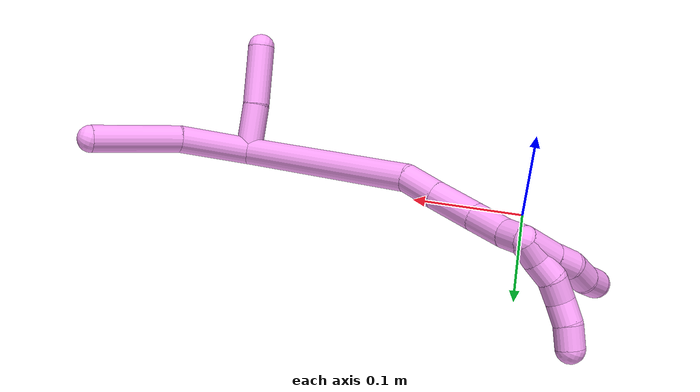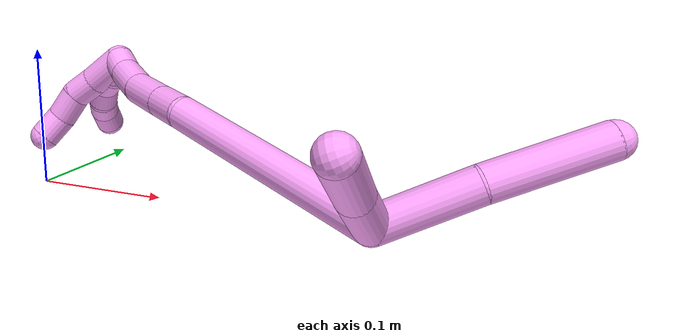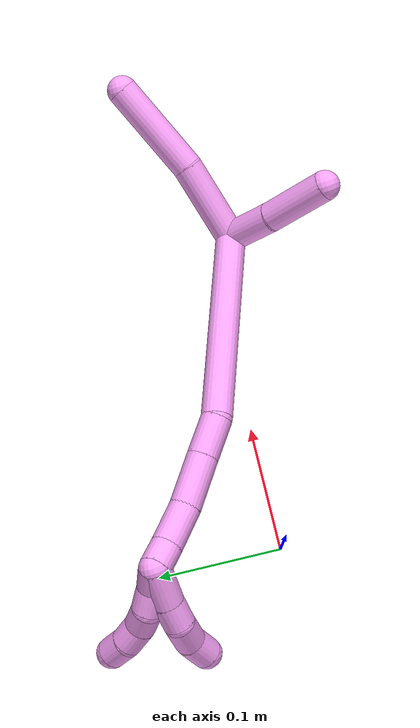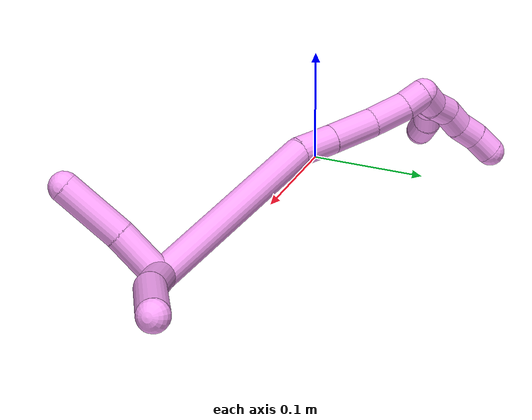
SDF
<sdf version="1.7">
 <world name="default">
  <model name="4">
   <static>0</static>
   <link name="4">
    <collision name="collision-cylinder-e_1_2_8">
     <pose>-0.00515 0.006086 0.033237 -0.181103 -0.151259 0.01376</pose>
     <geometry><cylinder><radius>0.0125</radius><length>0.068359</length></cylinder></geometry>
     <surface>
      <friction><ode><mu>1.16</mu><mu2>1.16</mu2><slip1>0</slip1><slip2>0</slip2></ode></friction>
      <contact><ode><kp>1e+06</kp><kd>1</kd><max_vel>0</max_vel><min_depth>0.001</min_depth></ode></contact>
     </surface>
    </collision>
    <visual name="visual-cylinder-e_1_2_8">
     <pose>-0.00515 0.006086 0.033237 -0.181103 -0.151259 0.01376</pose>
     <geometry><cylinder><radius>0.0125</radius><length>0.068359</length></cylinder></geometry>
     <material><ambient>1 0.65098 0.996078 1</ambient></material>
    </visual>
    <collision name="collision-cylinder-e_2_8_6">
     <pose>-0.017495 0.025856 0.104253 -0.347522 -0.177185 0.031181</pose>
     <geometry><cylinder><radius>0.0125</radius><length>0.081641</length></cylinder></geometry>
     <surface>
      <friction><ode><mu>1.16</mu><mu2>1.16</mu2><slip1>0</slip1><slip2>0</slip2></ode></friction>
      <contact><ode><kp>1e+06</kp><kd>1</kd><max_vel>0</max_vel><min_depth>0.001</min_depth></ode></contact>
     </surface>
    </collision>
    <visual name="visual-cylinder-e_2_8_6">
     <pose>-0.017495 0.025856 0.104253 -0.347522 -0.177185 0.031181</pose>
     <geometry><cylinder><radius>0.0125</radius><length>0.081641</length></cylinder></geometry>
     <material><ambient>1 0.65098 0.996078 1</ambient></material>
    </visual>
    <collision name="collision-cylinder-e_1_2_9">
     <pose>-0.00032 -0.021762 0.003817 1.39716 -0.014482 -0.012163</pose>
     <geometry><cylinder><radius>0.0125</radius><length>0.044193</length></cylinder></geometry>
     <surface>
      <friction><ode><mu>1.16</mu><mu2>1.16</mu2><slip1>0</slip1><slip2>0</slip2></ode></friction>
      <contact><ode><kp>1e+06</kp><kd>1</kd><max_vel>0</max_vel><min_depth>0.001</min_depth></ode></contact>
     </surface>
    </collision>
    <visual name="visual-cylinder-e_1_2_9">
     <pose>-0.00032 -0.021762 0.003817 1.39716 -0.014482 -0.012163</pose>
     <geometry><cylinder><radius>0.0125</radius><length>0.044193</length></cylinder></geometry>
     <material><ambient>1 0.65098 0.996078 1</ambient></material>
    </visual>
    <collision name="collision-cylinder-e_2_9_5">
     <pose>0.001398 -0.070627 0.013948 1.34193 0.073118 0.058053</pose>
     <geometry><cylinder><radius>0.0125</radius><length>0.055807</length></cylinder></geometry>
     <surface>
      <friction><ode><mu>1.16</mu><mu2>1.16</mu2><slip1>0</slip1><slip2>0</slip2></ode></friction>
      <contact><ode><kp>1e+06</kp><kd>1</kd><max_vel>0</max_vel><min_depth>0.001</min_depth></ode></contact>
     </surface>
    </collision>
    <visual name="visual-cylinder-e_2_9_5">
     <pose>0.001398 -0.070627 0.013948 1.34193 0.073118 0.058053</pose>
     <geometry><cylinder><radius>0.0125</radius><length>0.055807</length></cylinder></geometry>
     <material><ambient>1 0.65098 0.996078 1</ambient></material>
    </visual>
    <collision name="collision-cylinder-e_1_2_10">
     <pose>-0.06056 -0.006719 -0.059374 3.0289 -0.792104 -2.87343</pose>
     <geometry><cylinder><radius>0.0125</radius><length>0.170151</length></cylinder></geometry>
     <surface>
      <friction><ode><mu>1.16</mu><mu2>1.16</mu2><slip1>0</slip1><slip2>0</slip2></ode></friction>
      <contact><ode><kp>1e+06</kp><kd>1</kd><max_vel>0</max_vel><min_depth>0.001</min_depth></ode></contact>
     </surface>
    </collision>
    <visual name="visual-cylinder-e_1_2_10">
     <pose>-0.06056 -0.006719 -0.059374 3.0289 -0.792104 -2.87343</pose>
     <geometry><cylinder><radius>0.0125</radius><length>0.170151</length></cylinder></geometry>
     <material><ambient>1 0.65098 0.996078 1</ambient></material>
    </visual>
    <collision name="collision-cylinder-e_2_10_11">
     <pose>-0.132663 -0.009464 -0.129839 -2.79753 -0.775216 2.33686</pose>
     <geometry><cylinder><radius>0.0125</radius><length>0.03299</length></cylinder></geometry>
     <surface>
      <friction><ode><mu>1.16</mu><mu2>1.16</mu2><slip1>0</slip1><slip2>0</slip2></ode></friction>
      <contact><ode><kp>1e+06</kp><kd>1</kd><max_vel>0</max_vel><min_depth>0.001</min_depth></ode></contact>
     </surface>
    </collision>
    <visual name="visual-cylinder-e_2_10_11">
     <pose>-0.132663 -0.009464 -0.129839 -2.79753 -0.775216 2.33686</pose>
     <geometry><cylinder><radius>0.0125</radius><length>0.03299</length></cylinder></geometry>
     <material><ambient>1 0.65098 0.996078 1</ambient></material>
    </visual>
    <collision name="collision-cylinder-e_3_11_12">
     <pose>-0.15901 -0.000922 -0.154998 -2.82764 -0.785774 2.41195</pose>
     <geometry><cylinder><radius>0.0125</radius><length>0.041852</length></cylinder></geometry>
     <surface>
      <friction><ode><mu>1.16</mu><mu2>1.16</mu2><slip1>0</slip1><slip2>0</slip2></ode></friction>
      <contact><ode><kp>1e+06</kp><kd>1</kd><max_vel>0</max_vel><min_depth>0.001</min_depth></ode></contact>
     </surface>
    </collision>
    <visual name="visual-cylinder-e_3_11_12">
     <pose>-0.15901 -0.000922 -0.154998 -2.82764 -0.785774 2.41195</pose>
     <geometry><cylinder><radius>0.0125</radius><length>0.041852</length></cylinder></geometry>
     <material><ambient>1 0.65098 0.996078 1</ambient></material>
    </visual>
    <collision name="collision-cylinder-e_4_12_13">
     <pose>-0.187645 0.00718 -0.178349 -2.77781 -0.948062 2.45315</pose>
     <geometry><cylinder><radius>0.0125</radius><length>0.034059</length></cylinder></geometry>
     <surface>
      <friction><ode><mu>1.16</mu><mu2>1.16</mu2><slip1>0</slip1><slip2>0</slip2></ode></friction>
      <contact><ode><kp>1e+06</kp><kd>1</kd><max_vel>0</max_vel><min_depth>0.001</min_depth></ode></contact>
     </surface>
    </collision>
    <visual name="visual-cylinder-e_4_12_13">
     <pose>-0.187645 0.00718 -0.178349 -2.77781 -0.948062 2.45315</pose>
     <geometry><cylinder><radius>0.0125</radius><length>0.034059</length></cylinder></geometry>
     <material><ambient>1 0.65098 0.996078 1</ambient></material>
    </visual>
    <collision name="collision-cylinder-e_5_13_1">
     <pose>-0.210932 0.011674 -0.192037 -2.92704 -1.12579 2.80352</pose>
     <geometry><cylinder><radius>0.0125</radius><length>0.020948</length></cylinder></geometry>
     <surface>
      <friction><ode><mu>1.16</mu><mu2>1.16</mu2><slip1>0</slip1><slip2>0</slip2></ode></friction>
      <contact><ode><kp>1e+06</kp><kd>1</kd><max_vel>0</max_vel><min_depth>0.001</min_depth></ode></contact>
     </surface>
    </collision>
    <visual name="visual-cylinder-e_5_13_1">
     <pose>-0.210932 0.011674 -0.192037 -2.92704 -1.12579 2.80352</pose>
     <geometry><cylinder><radius>0.0125</radius><length>0.020948</length></cylinder></geometry>
     <material><ambient>1 0.65098 0.996078 1</ambient></material>
    </visual>
    <collision name="collision-cylinder-e_1_1_14">
     <pose>-0.218855 0.018007 -0.204736 -2.56666 0.153706 -0.509589</pose>
     <geometry><cylinder><radius>0.0125</radius><length>0.02</length></cylinder></geometry>
     <surface>
      <friction><ode><mu>1.16</mu><mu2>1.16</mu2><slip1>0</slip1><slip2>0</slip2></ode></friction>
      <contact><ode><kp>1e+06</kp><kd>1</kd><max_vel>0</max_vel><min_depth>0.001</min_depth></ode></contact>
     </surface>
    </collision>
    <visual name="visual-cylinder-e_1_1_14">
     <pose>-0.218855 0.018007 -0.204736 -2.56666 0.153706 -0.509589</pose>
     <geometry><cylinder><radius>0.0125</radius><length>0.02</length></cylinder></geometry>
     <material><ambient>1 0.65098 0.996078 1</ambient></material>
    </visual>
    <collision name="collision-cylinder-e_2_14_15">
     <pose>-0.218654 0.028731 -0.221373 -2.57143 -0.13336 0.448077</pose>
     <geometry><cylinder><radius>0.0125</radius><length>0.02</length></cylinder></geometry>
     <surface>
      <friction><ode><mu>1.16</mu><mu2>1.16</mu2><slip1>0</slip1><slip2>0</slip2></ode></friction>
      <contact><ode><kp>1e+06</kp><kd>1</kd><max_vel>0</max_vel><min_depth>0.001</min_depth></ode></contact>
     </surface>
    </collision>
    <visual name="visual-cylinder-e_2_14_15">
     <pose>-0.218654 0.028731 -0.221373 -2.57143 -0.13336 0.448077</pose>
     <geometry><cylinder><radius>0.0125</radius><length>0.02</length></cylinder></geometry>
     <material><ambient>1 0.65098 0.996078 1</ambient></material>
    </visual>
    <collision name="collision-cylinder-e_3_15_16">
     <pose>-0.21881 0.041289 -0.236547 -2.32934 0.11762 -0.272139</pose>
     <geometry><cylinder><radius>0.0125</radius><length>0.02</length></cylinder></geometry>
     <surface>
      <friction><ode><mu>1.16</mu><mu2>1.16</mu2><slip1>0</slip1><slip2>0</slip2></ode></friction>
      <contact><ode><kp>1e+06</kp><kd>1</kd><max_vel>0</max_vel><min_depth>0.001</min_depth></ode></contact>
     </surface>
    </collision>
    <visual name="visual-cylinder-e_3_15_16">
     <pose>-0.21881 0.041289 -0.236547 -2.32934 0.11762 -0.272139</pose>
     <geometry><cylinder><radius>0.0125</radius><length>0.02</length></cylinder></geometry>
     <material><ambient>1 0.65098 0.996078 1</ambient></material>
    </visual>
    <collision name="collision-cylinder-e_4_16_17">
     <pose>-0.219064 0.056547 -0.249137 -2.19178 -0.1432 0.277204</pose>
     <geometry><cylinder><radius>0.0125</radius><length>0.02</length></cylinder></geometry>
     <surface>
      <friction><ode><mu>1.16</mu><mu2>1.16</mu2><slip1>0</slip1><slip2>0</slip2></ode></friction>
      <contact><ode><kp>1e+06</kp><kd>1</kd><max_vel>0</max_vel><min_depth>0.001</min_depth></ode></contact>
     </surface>
    </collision>
    <visual name="visual-cylinder-e_4_16_17">
     <pose>-0.219064 0.056547 -0.249137 -2.19178 -0.1432 0.277204</pose>
     <geometry><cylinder><radius>0.0125</radius><length>0.02</length></cylinder></geometry>
     <material><ambient>1 0.65098 0.996078 1</ambient></material>
    </visual>
    <collision name="collision-cylinder-e_5_17_4">
     <pose>-0.220411 0.073671 -0.259097 -2.00436 0.008013 -0.012539</pose>
     <geometry><cylinder><radius>0.0125</radius><length>0.02</length></cylinder></geometry>
     <surface>
      <friction><ode><mu>1.16</mu><mu2>1.16</mu2><slip1>0</slip1><slip2>0</slip2></ode></friction>
      <contact><ode><kp>1e+06</kp><kd>1</kd><max_vel>0</max_vel><min_depth>0.001</min_depth></ode></contact>
     </surface>
    </collision>
    <visual name="visual-cylinder-e_5_17_4">
     <pose>-0.220411 0.073671 -0.259097 -2.00436 0.008013 -0.012539</pose>
     <geometry><cylinder><radius>0.0125</radius><length>0.02</length></cylinder></geometry>
     <material><ambient>1 0.65098 0.996078 1</ambient></material>
    </visual>
    <collision name="collision-cylinder-e_1_1_18">
     <pose>-0.217258 0.01483 -0.211783 -2.99938 0.199162 -1.90296</pose>
     <geometry><cylinder><radius>0.0125</radius><length>0.031618</length></cylinder></geometry>
     <surface>
      <friction><ode><mu>1.16</mu><mu2>1.16</mu2><slip1>0</slip1><slip2>0</slip2></ode></friction>
      <contact><ode><kp>1e+06</kp><kd>1</kd><max_vel>0</max_vel><min_depth>0.001</min_depth></ode></contact>
     </surface>
    </collision>
    <visual name="visual-cylinder-e_1_1_18">
     <pose>-0.217258 0.01483 -0.211783 -2.99938 0.199162 -1.90296</pose>
     <geometry><cylinder><radius>0.0125</radius><length>0.031618</length></cylinder></geometry>
     <material><ambient>1 0.65098 0.996078 1</ambient></material>
    </visual>
    <collision name="collision-cylinder-e_2_18_19">
     <pose>-0.211655 0.017486 -0.23748 -3.09727 0.234391 -2.76946</pose>
     <geometry><cylinder><radius>0.0125</radius><length>0.021317</length></cylinder></geometry>
     <surface>
      <friction><ode><mu>1.16</mu><mu2>1.16</mu2><slip1>0</slip1><slip2>0</slip2></ode></friction>
      <contact><ode><kp>1e+06</kp><kd>1</kd><max_vel>0</max_vel><min_depth>0.001</min_depth></ode></contact>
     </surface>
    </collision>
    <visual name="visual-cylinder-e_2_18_19">
     <pose>-0.211655 0.017486 -0.23748 -3.09727 0.234391 -2.76946</pose>
     <geometry><cylinder><radius>0.0125</radius><length>0.021317</length></cylinder></geometry>
     <material><ambient>1 0.65098 0.996078 1</ambient></material>
    </visual>
    <collision name="collision-cylinder-e_3_19_20">
     <pose>-0.203209 0.020859 -0.258223 -2.8681 0.505491 -2.16252</pose>
     <geometry><cylinder><radius>0.0125</radius><length>0.024659</length></cylinder></geometry>
     <surface>
      <friction><ode><mu>1.16</mu><mu2>1.16</mu2><slip1>0</slip1><slip2>0</slip2></ode></friction>
      <contact><ode><kp>1e+06</kp><kd>1</kd><max_vel>0</max_vel><min_depth>0.001</min_depth></ode></contact>
     </surface>
    </collision>
    <visual name="visual-cylinder-e_3_19_20">
     <pose>-0.203209 0.020859 -0.258223 -2.8681 0.505491 -2.16252</pose>
     <geometry><cylinder><radius>0.0125</radius><length>0.024659</length></cylinder></geometry>
     <material><ambient>1 0.65098 0.996078 1</ambient></material>
    </visual>
    <collision name="collision-cylinder-e_4_20_3">
     <pose>-0.190689 0.023585 -0.277696 3.121 0.624482 3.07782</pose>
     <geometry><cylinder><radius>0.0125</radius><length>0.022406</length></cylinder></geometry>
     <surface>
      <friction><ode><mu>1.16</mu><mu2>1.16</mu2><slip1>0</slip1><slip2>0</slip2></ode></friction>
      <contact><ode><kp>1e+06</kp><kd>1</kd><max_vel>0</max_vel><min_depth>0.001</min_depth></ode></contact>
     </surface>
    </collision>
    <visual name="visual-cylinder-e_4_20_3">
     <pose>-0.190689 0.023585 -0.277696 3.121 0.624482 3.07782</pose>
     <geometry><cylinder><radius>0.0125</radius><length>0.022406</length></cylinder></geometry>
     <material><ambient>1 0.65098 0.996078 1</ambient></material>
    </visual>
    <collision name="collision-sphere-3">
     <pose>-0.184139 0.023398 -0.286783 0 -0 0</pose>
     <geometry><sphere><radius>0.0125</radius></sphere></geometry>
     <surface>
      <friction><ode><mu>1.16</mu><mu2>1.16</mu2><slip1>0</slip1><slip2>0</slip2></ode></friction>
      <contact><ode><kp>1e+06</kp><kd>1</kd><max_vel>0</max_vel><min_depth>0.001</min_depth></ode></contact>
     </surface>
    </collision>
    <visual name="visual-sphere-3">
     <pose>-0.184139 0.023398 -0.286783 0 -0 0</pose>
     <geometry><sphere><radius>0.0125</radius></sphere></geometry>
     <material><ambient>1 0.65098 0.996078 1</ambient></material>
    </visual>
    <collision name="collision-sphere-20">
     <pose>-0.197239 0.023772 -0.26861 0 -0 0</pose>
     <geometry><sphere><radius>0.0125</radius></sphere></geometry>
     <surface>
      <friction><ode><mu>1.16</mu><mu2>1.16</mu2><slip1>0</slip1><slip2>0</slip2></ode></friction>
      <contact><ode><kp>1e+06</kp><kd>1</kd><max_vel>0</max_vel><min_depth>0.001</min_depth></ode></contact>
     </surface>
    </collision>
    <visual name="visual-sphere-20">
     <pose>-0.197239 0.023772 -0.26861 0 -0 0</pose>
     <geometry><sphere><radius>0.0125</radius></sphere></geometry>
     <material><ambient>1 0.65098 0.996078 1</ambient></material>
    </visual>
    <collision name="collision-sphere-19">
     <pose>-0.20918 0.017945 -0.247836 0 -0 0</pose>
     <geometry><sphere><radius>0.0125</radius></sphere></geometry>
     <surface>
      <friction><ode><mu>1.16</mu><mu2>1.16</mu2><slip1>0</slip1><slip2>0</slip2></ode></friction>
      <contact><ode><kp>1e+06</kp><kd>1</kd><max_vel>0</max_vel><min_depth>0.001</min_depth></ode></contact>
     </surface>
    </collision>
    <visual name="visual-sphere-19">
     <pose>-0.20918 0.017945 -0.247836 0 -0 0</pose>
     <geometry><sphere><radius>0.0125</radius></sphere></geometry>
     <material><ambient>1 0.65098 0.996078 1</ambient></material>
    </visual>
    <collision name="collision-sphere-10">
     <pose>-0.121119 -0.013439 -0.118747 0 -0 0</pose>
     <geometry><sphere><radius>0.0125</radius></sphere></geometry>
     <surface>
      <friction><ode><mu>1.16</mu><mu2>1.16</mu2><slip1>0</slip1><slip2>0</slip2></ode></friction>
      <contact><ode><kp>1e+06</kp><kd>1</kd><max_vel>0</max_vel><min_depth>0.001</min_depth></ode></contact>
     </surface>
    </collision>
    <visual name="visual-sphere-10">
     <pose>-0.121119 -0.013439 -0.118747 0 -0 0</pose>
     <geometry><sphere><radius>0.0125</radius></sphere></geometry>
     <material><ambient>1 0.65098 0.996078 1</ambient></material>
    </visual>
    <collision name="collision-sphere-5">
     <pose>0.003437 -0.09773 0.020261 0 -0 0</pose>
     <geometry><sphere><radius>0.0125</radius></sphere></geometry>
     <surface>
      <friction><ode><mu>1.16</mu><mu2>1.16</mu2><slip1>0</slip1><slip2>0</slip2></ode></friction>
      <contact><ode><kp>1e+06</kp><kd>1</kd><max_vel>0</max_vel><min_depth>0.001</min_depth></ode></contact>
     </surface>
    </collision>
    <visual name="visual-sphere-5">
     <pose>0.003437 -0.09773 0.020261 0 -0 0</pose>
     <geometry><sphere><radius>0.0125</radius></sphere></geometry>
     <material><ambient>1 0.65098 0.996078 1</ambient></material>
    </visual>
    <collision name="collision-sphere-6">
     <pose>-0.02469 0.039541 0.142032 0 -0 0</pose>
     <geometry><sphere><radius>0.0125</radius></sphere></geometry>
     <surface>
      <friction><ode><mu>1.16</mu><mu2>1.16</mu2><slip1>0</slip1><slip2>0</slip2></ode></friction>
      <contact><ode><kp>1e+06</kp><kd>1</kd><max_vel>0</max_vel><min_depth>0.001</min_depth></ode></contact>
     </surface>
    </collision>
    <visual name="visual-sphere-6">
     <pose>-0.02469 0.039541 0.142032 0 -0 0</pose>
     <geometry><sphere><radius>0.0125</radius></sphere></geometry>
     <material><ambient>1 0.65098 0.996078 1</ambient></material>
    </visual>
    <collision name="collision-sphere-9">
     <pose>-0.00064 -0.043524 0.007634 0 -0 0</pose>
     <geometry><sphere><radius>0.0125</radius></sphere></geometry>
     <surface>
      <friction><ode><mu>1.16</mu><mu2>1.16</mu2><slip1>0</slip1><slip2>0</slip2></ode></friction>
      <contact><ode><kp>1e+06</kp><kd>1</kd><max_vel>0</max_vel><min_depth>0.001</min_depth></ode></contact>
     </surface>
    </collision>
    <visual name="visual-sphere-9">
     <pose>-0.00064 -0.043524 0.007634 0 -0 0</pose>
     <geometry><sphere><radius>0.0125</radius></sphere></geometry>
     <material><ambient>1 0.65098 0.996078 1</ambient></material>
    </visual>
    <collision name="collision-sphere-2">
     <geometry><sphere><radius>0.0125</radius></sphere></geometry>
     <surface>
      <friction><ode><mu>1.16</mu><mu2>1.16</mu2><slip1>0</slip1><slip2>0</slip2></ode></friction>
      <contact><ode><kp>1e+06</kp><kd>1</kd><max_vel>0</max_vel><min_depth>0.001</min_depth></ode></contact>
     </surface>
    </collision>
    <visual name="visual-sphere-2">
     <geometry><sphere><radius>0.0125</radius></sphere></geometry>
     <material><ambient>1 0.65098 0.996078 1</ambient></material>
    </visual>
    <collision name="collision-sphere-8">
     <pose>-0.010301 0.012172 0.066474 0 -0 0</pose>
     <geometry><sphere><radius>0.0125</radius></sphere></geometry>
     <surface>
      <friction><ode><mu>1.16</mu><mu2>1.16</mu2><slip1>0</slip1><slip2>0</slip2></ode></friction>
      <contact><ode><kp>1e+06</kp><kd>1</kd><max_vel>0</max_vel><min_depth>0.001</min_depth></ode></contact>
     </surface>
    </collision>
    <visual name="visual-sphere-8">
     <pose>-0.010301 0.012172 0.066474 0 -0 0</pose>
     <geometry><sphere><radius>0.0125</radius></sphere></geometry>
     <material><ambient>1 0.65098 0.996078 1</ambient></material>
    </visual>
    <collision name="collision-sphere-11">
     <pose>-0.144207 -0.00549 -0.14093 0 -0 0</pose>
     <geometry><sphere><radius>0.0125</radius></sphere></geometry>
     <surface>
      <friction><ode><mu>1.16</mu><mu2>1.16</mu2><slip1>0</slip1><slip2>0</slip2></ode></friction>
      <contact><ode><kp>1e+06</kp><kd>1</kd><max_vel>0</max_vel><min_depth>0.001</min_depth></ode></contact>
     </surface>
    </collision>
    <visual name="visual-sphere-11">
     <pose>-0.144207 -0.00549 -0.14093 0 -0 0</pose>
     <geometry><sphere><radius>0.0125</radius></sphere></geometry>
     <material><ambient>1 0.65098 0.996078 1</ambient></material>
    </visual>
    <collision name="collision-sphere-12">
     <pose>-0.173813 0.003646 -0.169067 0 -0 0</pose>
     <geometry><sphere><radius>0.0125</radius></sphere></geometry>
     <surface>
      <friction><ode><mu>1.16</mu><mu2>1.16</mu2><slip1>0</slip1><slip2>0</slip2></ode></friction>
      <contact><ode><kp>1e+06</kp><kd>1</kd><max_vel>0</max_vel><min_depth>0.001</min_depth></ode></contact>
     </surface>
    </collision>
    <visual name="visual-sphere-12">
     <pose>-0.173813 0.003646 -0.169067 0 -0 0</pose>
     <geometry><sphere><radius>0.0125</radius></sphere></geometry>
     <material><ambient>1 0.65098 0.996078 1</ambient></material>
    </visual>
    <collision name="collision-sphere-13">
     <pose>-0.201478 0.010714 -0.187632 0 -0 0</pose>
     <geometry><sphere><radius>0.0125</radius></sphere></geometry>
     <surface>
      <friction><ode><mu>1.16</mu><mu2>1.16</mu2><slip1>0</slip1><slip2>0</slip2></ode></friction>
      <contact><ode><kp>1e+06</kp><kd>1</kd><max_vel>0</max_vel><min_depth>0.001</min_depth></ode></contact>
     </surface>
    </collision>
    <visual name="visual-sphere-13">
     <pose>-0.201478 0.010714 -0.187632 0 -0 0</pose>
     <geometry><sphere><radius>0.0125</radius></sphere></geometry>
     <material><ambient>1 0.65098 0.996078 1</ambient></material>
    </visual>
    <collision name="collision-sphere-1">
     <pose>-0.220386 0.012634 -0.196443 0 -0 0</pose>
     <geometry><sphere><radius>0.0125</radius></sphere></geometry>
     <surface>
      <friction><ode><mu>1.16</mu><mu2>1.16</mu2><slip1>0</slip1><slip2>0</slip2></ode></friction>
      <contact><ode><kp>1e+06</kp><kd>1</kd><max_vel>0</max_vel><min_depth>0.001</min_depth></ode></contact>
     </surface>
    </collision>
    <visual name="visual-sphere-1">
     <pose>-0.220386 0.012634 -0.196443 0 -0 0</pose>
     <geometry><sphere><radius>0.0125</radius></sphere></geometry>
     <material><ambient>1 0.65098 0.996078 1</ambient></material>
    </visual>
    <collision name="collision-sphere-18">
     <pose>-0.214131 0.017026 -0.227123 0 -0 0</pose>
     <geometry><sphere><radius>0.0125</radius></sphere></geometry>
     <surface>
      <friction><ode><mu>1.16</mu><mu2>1.16</mu2><slip1>0</slip1><slip2>0</slip2></ode></friction>
      <contact><ode><kp>1e+06</kp><kd>1</kd><max_vel>0</max_vel><min_depth>0.001</min_depth></ode></contact>
     </surface>
    </collision>
    <visual name="visual-sphere-18">
     <pose>-0.214131 0.017026 -0.227123 0 -0 0</pose>
     <geometry><sphere><radius>0.0125</radius></sphere></geometry>
     <material><ambient>1 0.65098 0.996078 1</ambient></material>
    </visual>
    <collision name="collision-sphere-14">
     <pose>-0.217324 0.023381 -0.213029 0 -0 0</pose>
     <geometry><sphere><radius>0.0125</radius></sphere></geometry>
     <surface>
      <friction><ode><mu>1.16</mu><mu2>1.16</mu2><slip1>0</slip1><slip2>0</slip2></ode></friction>
      <contact><ode><kp>1e+06</kp><kd>1</kd><max_vel>0</max_vel><min_depth>0.001</min_depth></ode></contact>
     </surface>
    </collision>
    <visual name="visual-sphere-14">
     <pose>-0.217324 0.023381 -0.213029 0 -0 0</pose>
     <geometry><sphere><radius>0.0125</radius></sphere></geometry>
     <material><ambient>1 0.65098 0.996078 1</ambient></material>
    </visual>
    <collision name="collision-sphere-15">
     <pose>-0.219984 0.034081 -0.229716 0 -0 0</pose>
     <geometry><sphere><radius>0.0125</radius></sphere></geometry>
     <surface>
      <friction><ode><mu>1.16</mu><mu2>1.16</mu2><slip1>0</slip1><slip2>0</slip2></ode></friction>
      <contact><ode><kp>1e+06</kp><kd>1</kd><max_vel>0</max_vel><min_depth>0.001</min_depth></ode></contact>
     </surface>
    </collision>
    <visual name="visual-sphere-15">
     <pose>-0.219984 0.034081 -0.229716 0 -0 0</pose>
     <geometry><sphere><radius>0.0125</radius></sphere></geometry>
     <material><ambient>1 0.65098 0.996078 1</ambient></material>
    </visual>
    <collision name="collision-sphere-16">
     <pose>-0.217637 0.048497 -0.243378 0 -0 0</pose>
     <geometry><sphere><radius>0.0125</radius></sphere></geometry>
     <surface>
      <friction><ode><mu>1.16</mu><mu2>1.16</mu2><slip1>0</slip1><slip2>0</slip2></ode></friction>
      <contact><ode><kp>1e+06</kp><kd>1</kd><max_vel>0</max_vel><min_depth>0.001</min_depth></ode></contact>
     </surface>
    </collision>
    <visual name="visual-sphere-16">
     <pose>-0.217637 0.048497 -0.243378 0 -0 0</pose>
     <geometry><sphere><radius>0.0125</radius></sphere></geometry>
     <material><ambient>1 0.65098 0.996078 1</ambient></material>
    </visual>
    <collision name="collision-sphere-17">
     <pose>-0.220491 0.064597 -0.254896 0 -0 0</pose>
     <geometry><sphere><radius>0.0125</radius></sphere></geometry>
     <surface>
      <friction><ode><mu>1.16</mu><mu2>1.16</mu2><slip1>0</slip1><slip2>0</slip2></ode></friction>
      <contact><ode><kp>1e+06</kp><kd>1</kd><max_vel>0</max_vel><min_depth>0.001</min_depth></ode></contact>
     </surface>
    </collision>
    <visual name="visual-sphere-17">
     <pose>-0.220491 0.064597 -0.254896 0 -0 0</pose>
     <geometry><sphere><radius>0.0125</radius></sphere></geometry>
     <material><ambient>1 0.65098 0.996078 1</ambient></material>
    </visual>
    <collision name="collision-sphere-4">
     <pose>-0.220331 0.082746 -0.263298 0 -0 0</pose>
     <geometry><sphere><radius>0.0125</radius></sphere></geometry>
     <surface>
      <friction><ode><mu>1.16</mu><mu2>1.16</mu2><slip1>0</slip1><slip2>0</slip2></ode></friction>
      <contact><ode><kp>1e+06</kp><kd>1</kd><max_vel>0</max_vel><min_depth>0.001</min_depth></ode></contact>
     </surface>
    </collision>
    <visual name="visual-sphere-4">
     <pose>-0.220331 0.082746 -0.263298 0 -0 0</pose>
     <geometry><sphere><radius>0.0125</radius></sphere></geometry>
     <material><ambient>1 0.65098 0.996078 1</ambient></material>
    </visual>
    <inertial>
     <pose>-0.101923 0.003824 -0.089341 0 -0 0</pose>
     <mass>0.75</mass>
     <inertia>
      <ixx>-0.000277</ixx>
      <ixy>0</ixy>
      <ixz>0</ixz>
      <iyy>0.000436</iyy>
      <iyz>0</iyz>
      <izz>0.000331</izz>
     </inertia>
    </inertial>
   </link>
   <pose>0.261372 -0.022155 0.011482 -0.969721 0.778121 -1.00462</pose>
  </model>
 </world>
</sdf>
